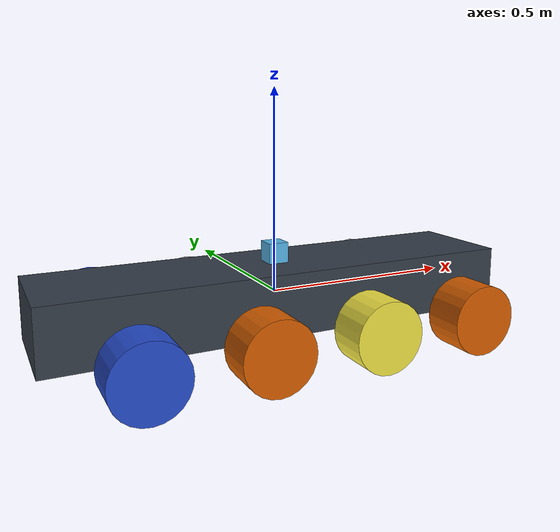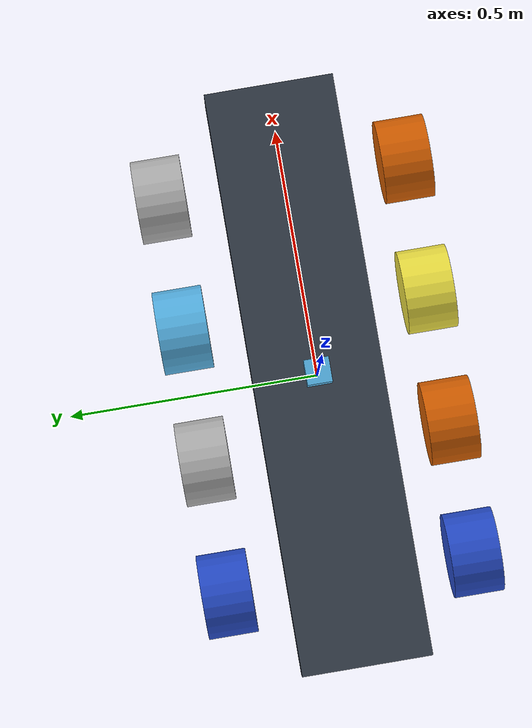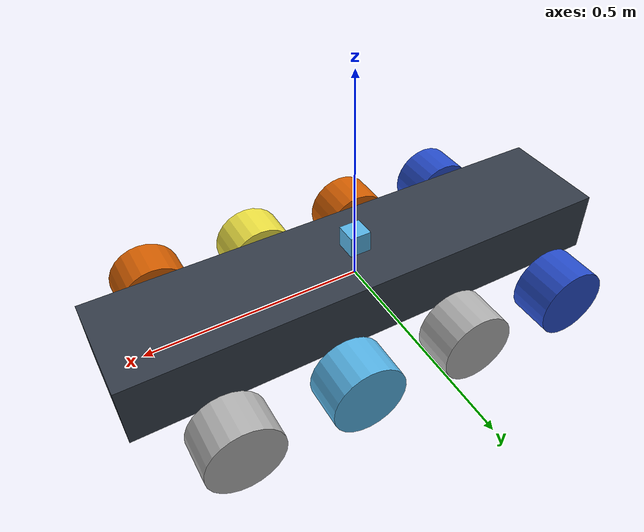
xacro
<?xml version="1.0" ?>
<robot name="agv" xmlns:xacro="https://www.ros.org/wiki/xacro" >

  <material name="black">
    <color rgba="0.0 0.0 0.0 1.0"/>
  </material>
  <material name="blue">
    <color rgba="0.203125 0.23828125 0.28515625 1.0"/>
  </material>
  <material name="green">
    <color rgba="0.0 0.8 0.0 1.0"/>
  </material>
  <material name="grey">
    <color rgba="0.2 0.2 0.2 1.0"/>
  </material>
  <material name="orange">
    <color rgba="1.0 0.423529411765 0.0392156862745 1.0"/>
  </material>
  <material name="brown">
    <color rgba="0.870588235294 0.811764705882 0.764705882353 1.0"/>
  </material>
  <material name="red">
    <color rgba="0.80078125 0.12890625 0.1328125 1.0"/>
  </material>
  <material name="white">
    <color rgba="1.0 1.0 1.0 1.0"/>
  </material>

  <gazebo reference="link_chassis">
    <material>Gazebo/Orange</material>
  </gazebo>
  <gazebo reference="link_left_wheel">
    <material>Gazebo/Blue</material>
  </gazebo>
  <gazebo reference="link_right_wheel">
    <material>Gazebo/Blue</material>
  </gazebo>

  <link name="link_chassis">
    <!-- pose and inertial -->
    <pose>0 0 0.1 0 0 0</pose>

    <inertial>
      <mass value="26"/>
      <origin rpy="0 0 0" xyz="0 0 0.1"/>
      <inertia ixx="0.0395416666667" ixy="0" ixz="0" iyy="0.106208333333" iyz="0" izz="0.106208333333"/>
    </inertial>

    <collision name="collision_chassis">
      <geometry>
        <box size="1.17 0.26 0.15"/>
      </geometry>
    </collision>

    <visual>
      <origin rpy="0 0 0" xyz="0 0 0"/>
      <geometry>
        <box size="1.17 0.26 0.15"/>
      </geometry>
      <material name="blue"/>
    </visual>

    <!-- caster front -->

    </link>

  <!-- Create wheel right -->

  <link name="link_right_wheel">
    <inertial>
      <mass value="0.2"/>
      <origin rpy="0 1.5707 1.5707" xyz="0 0 0"/>
      <inertia ixx="0.00052666666" ixy="0" ixz="0" iyy="0.00052666666" iyz="0" izz="0.001"/>
    </inertial>

    <collision name="link_right_wheel_collision">
      <origin rpy="0 1.5707 1.5707" xyz="0 0 0" />
      <geometry>
       <cylinder length="0.1" radius="0.085"/>
      </geometry>
    </collision>

    <visual name="link_right_wheel_visual">
      <origin rpy="0 1.5707 1.5707" xyz="0 0 0"/>
      <geometry>
       <cylinder length="0.1" radius="0.085"/>
      </geometry>
    </visual>

  </link>

    <link name="link_right_wheel_dir">
    <inertial>
      <mass value="0.01"/>
      <origin rpy="0 1.5707 1.5707" xyz="0 0 0"/>
      <inertia ixx="0.00052666666" ixy="0" ixz="0" iyy="0.00052666666" iyz="0" izz="0.001"/>
    </inertial>

  </link>

    <link name="link_left_wheel">
    <inertial>
      <mass value="0.2"/>
      <origin rpy="0 1.5707 1.5707" xyz="0 0 0"/>
      <inertia ixx="0.00052666666" ixy="0" ixz="0" iyy="0.00052666666" iyz="0" izz="0.001"/>
    </inertial>

    <collision name="link_left_wheel_collision">
      <origin rpy="0 1.5707 1.5707" xyz="0 0 0" />
      <geometry>
        <cylinder length="0.1" radius="0.085"/>
      </geometry>
    </collision>

    <visual name="link_left_wheel_visual">
      <origin rpy="0 1.5707 1.5707" xyz="0 0 0"/>
      <geometry>
        <cylinder length="0.1" radius="0.085"/>
      </geometry>
    </visual>

  </link>

      <link name="link_left_wheel_dir">
    <inertial>
      <mass value="0.01"/>
      <origin rpy="0 1.5707 1.5707" xyz="0 0 0"/>
      <inertia ixx="0.00052666666" ixy="0" ixz="0" iyy="0.00052666666" iyz="0" izz="0.001"/>
    </inertial>

  </link>

    <link name="link_left_wheel_2">
    <inertial>
      <mass value="0.2"/>
      <origin rpy="0 1.5707 1.5707" xyz="0 0 0"/>
      <inertia ixx="0.00052666666" ixy="0" ixz="0" iyy="0.00052666666" iyz="0" izz="0.001"/>
    </inertial>

    <collision name="link_left_wheel_collision_2">
      <origin rpy="0 1.5707 1.5707" xyz="0 0 0" />
      <geometry>
        <cylinder length="0.1" radius="0.085"/>
      </geometry>
    </collision>

    <visual name="link_left_wheel_visual_2">
      <origin rpy="0 1.5707 1.5707" xyz="0 0 0"/>
      <geometry>
       <cylinder length="0.1" radius="0.085"/>
      </geometry>
    </visual>

  </link>

       <link name="link_left_wheel_2_dir">
    <inertial>
      <mass value="0.01"/>
      <origin rpy="0 1.5707 1.5707" xyz="0 0 0"/>
      <inertia ixx="0.00052666666" ixy="0" ixz="0" iyy="0.00052666666" iyz="0" izz="0.001"/>
    </inertial>

  </link>

      <link name="link_right_wheel_2">
    <inertial>
      <mass value="0.2"/>
      <origin rpy="0 1.5707 1.5707" xyz="0 0 0"/>
      <inertia ixx="0.00052666666" ixy="0" ixz="0" iyy="0.00052666666" iyz="0" izz="0.001"/>
    </inertial>

    <collision name="link_right_wheel_collision_2">
      <origin rpy="0 1.5707 1.5707" xyz="0 0 0" />
      <geometry>
       <cylinder length="0.1" radius="0.085"/>
      </geometry>
    </collision>

    <visual name="link_right_wheel_visual_2">
      <origin rpy="0 1.5707 1.5707" xyz="0 0 0"/>
      <geometry>
      <cylinder length="0.1" radius="0.085"/>
      </geometry>
    </visual>

  </link>

         <link name="link_right_wheel_2_dir">
    <inertial>
      <mass value="0.01"/>
      <origin rpy="0 1.5707 1.5707" xyz="0 0 0"/>
      <inertia ixx="0.00052666666" ixy="0" ixz="0" iyy="0.00052666666" iyz="0" izz="0.001"/>
    </inertial>

  </link>

          <link name="link_right_wheel_3">
    <inertial>
      <mass value="0.2"/>
      <origin rpy="0 1.5707 1.5707" xyz="0 0 0"/>
      <inertia ixx="0.00052666666" ixy="0" ixz="0" iyy="0.00052666666" iyz="0" izz="0.001"/>
    </inertial>

    <collision name="link_right_wheel_collision_3">
      <origin rpy="0 1.5707 1.5707" xyz="0 0 0" />
      <geometry>
      <cylinder length="0.1" radius="0.085"/>
      </geometry>
    </collision>

    <visual name="link_right_wheel_visual_3">
      <origin rpy="0 1.5707 1.5707" xyz="0 0 0"/>
      <geometry>
        <cylinder length="0.1" radius="0.085"/>
      </geometry>
    </visual>

  </link>

         <link name="link_right_wheel_3_dir">
    <inertial>
      <mass value="0.01"/>
      <origin rpy="0 1.5707 1.5707" xyz="0 0 0"/>
      <inertia ixx="0.00052666666" ixy="0" ixz="0" iyy="0.00052666666" iyz="0" izz="0.001"/>
    </inertial>

  </link>

          <link name="link_left_wheel_3">
    <inertial>
      <mass value="0.2"/>
      <origin rpy="0 1.5707 1.5707" xyz="0 0 0"/>
      <inertia ixx="0.00052666666" ixy="0" ixz="0" iyy="0.00052666666" iyz="0" izz="0.001"/>
    </inertial>

    <collision name="link_left_wheel_collision_3">
      <origin rpy="0 1.5707 1.5707" xyz="0 0 0" />
      <geometry>
      <cylinder length="0.1" radius="0.085"/>
      </geometry>
    </collision>

    <visual name="link_left_wheel_visual_3">
      <origin rpy="0 1.5707 1.5707" xyz="0 0 0"/>
      <geometry>
        <cylinder length="0.1" radius="0.085"/>
      </geometry>
    </visual>

  </link>

         <link name="link_left_wheel_3_dir">
    <inertial>
      <mass value="0.01"/>
      <origin rpy="0 1.5707 1.5707" xyz="0 0 0"/>
      <inertia ixx="0.00052666666" ixy="0" ixz="0" iyy="0.00052666666" iyz="0" izz="0.001"/>
    </inertial>

  </link>

           <link name="link_left_wheel_4">
    <inertial>
      <mass value="0.2"/>
      <origin rpy="0 1.5707 1.5707" xyz="0 0 0"/>
      <inertia ixx="0.00052666666" ixy="0" ixz="0" iyy="0.00052666666" iyz="0" izz="0.001"/>
    </inertial>

    <collision name="link_left_wheel_collision_4">
      <origin rpy="0 1.5707 1.5707" xyz="0 0 0" />
      <geometry>
        <cylinder length="0.1" radius="0.085"/>
      </geometry>
    </collision>

    <visual name="link_left_wheel_visual_4">
      <origin rpy="0 1.5707 1.5707" xyz="0 0 0"/>
      <geometry>
        <cylinder length="0.1" radius="0.085"/>
      </geometry>
    </visual>

  </link>

         <link name="link_right_wheel_4_dir">
    <inertial>
      <mass value="0.01"/>
      <origin rpy="0 1.5707 1.5707" xyz="0 0 0"/>
      <inertia ixx="0.00052666666" ixy="0" ixz="0" iyy="0.00052666666" iyz="0" izz="0.001"/>
    </inertial>

  </link>

           <link name="link_right_wheel_4">
    <inertial>
      <mass value="0.2"/>
      <origin rpy="0 1.5707 1.5707" xyz="0 0 0"/>
      <inertia ixx="0.00052666666" ixy="0" ixz="0" iyy="0.00052666666" iyz="0" izz="0.001"/>
    </inertial>

    <collision name="link_right_wheel_collision_4">
      <origin rpy="0 1.5707 1.5707" xyz="0 0 0" />
      <geometry>
        <cylinder length="0.1" radius="0.085"/>
      </geometry>
    </collision>

    <visual name="link_right_wheel_visual_4">
      <origin rpy="0 1.5707 1.5707" xyz="0 0 0"/>
      <geometry>
        <cylinder length="0.1" radius="0.085"/>
      </geometry>
    </visual>

  </link>

         <link name="link_left_wheel_4_dir">
    <inertial>
      <mass value="0.01"/>
      <origin rpy="0 1.5707 1.5707" xyz="0 0 0"/>
      <inertia ixx="0.00052666666" ixy="0" ixz="0" iyy="0.00052666666" iyz="0" izz="0.001"/>
    </inertial>

  </link>

  <joint name="hokuyo_joint" type="fixed">

    <origin xyz="0 0 0.1" rpy="0 0 0"/>
    <parent link="link_chassis"/>
    <child link="hokuyo_link"/>
</joint>

<link name="hokuyo_link">
    <collision>
      <origin xyz="0 0 0" rpy="0 0 0"/>
      <geometry>
    <box size="0.05 0.05 0.05"/>
      </geometry>
    </collision>
    <visual>
      <origin xyz="0 0 0" rpy="0 0 0"/>
      <geometry>
        <box size="0.05 0.05 0.05"/>
      </geometry>
    </visual>
    <inertial>
      <mass value="0.00001" />
      <origin xyz="0 0 0" rpy="0 0 0"/>
      <inertia ixx="0.00000000000000001" ixy="0" ixz="0" iyy="0" iyz="0" izz="0" />
    </inertial>
  </link>

<gazebo reference="hokuyo_link">
    <sensor type="ray" name="head_hokuyo_sensor">
      <pose>0 0 2 0 0 0</pose>
      <visualize>true</visualize>
      <update_rate>40</update_rate>
      <ray>
        <scan>
          <horizontal>
            <samples>1080</samples>
            <resolution>1</resolution>
            <min_angle>-2.3559777</min_angle>
            <max_angle>2.3559777</max_angle>
          </horizontal>
        </scan>
        <range>
          <min>0.10</min>
          <max>30.0</max>
          <resolution>0.01</resolution>
        </range>
        <noise>
          <type>gaussian</type>

          <mean>0.0</mean>
          <stddev>0.01</stddev>
        </noise>
      </ray>
      <plugin name="gazebo_ros_head_hokuyo_controller" filename="libgazebo_ros_laser.so">
        <topicName>/hokuyo_scan</topicName>
        <frameName>hokuyo_link</frameName>
      </plugin>
    </sensor>
</gazebo>

  <joint name="joint_right_wheel_dir" type="revolute">
    <origin rpy="0 0 0" xyz="-0.4 0.25 -0.05"/>
    <child link="link_right_wheel_dir" />
    <parent link="link_chassis"/>
    <axis rpy="0 0 0" xyz="0 0 1"/>
    <limit effort="10000" velocity="1000" lower="-0.55" upper="0.55"/>
    <joint_properties damping="1.0" friction="1.0" />
  </joint>

  <!--   Joint for right wheel  -->
  <joint name="joint_right_wheel" type="continuous">
    <origin rpy="0 0 0" xyz="0 0 0"/>
    <child link="link_right_wheel" />
    <parent link="link_right_wheel_dir"/>
    <limit effort="10000" velocity="1000"/>
    <axis rpy="0 0 0" xyz="0 1 0"/>
    <joint_properties damping="1.0" friction="1.0" />
  </joint>

  <joint name="joint_left_wheel_dir" type="revolute">
    <origin rpy="0 0 0" xyz="-0.4 -0.25 -0.05"/>
    <child link="link_left_wheel_dir" />
    <parent link="link_chassis"/>
    <axis rpy="0 0 0" xyz="0 0 1"/>
    <limit effort="10000" velocity="1000" lower="-0.55" upper="0.55"/>
    <joint_properties damping="1.0" friction="1.0" />
  </joint>

  <joint name="joint_left_wheel" type="continuous">
    <origin rpy="0 0 0" xyz="0 0 0"/>
    <child link="link_left_wheel" />
    <parent link="link_left_wheel_dir"/>
    <axis rpy="0 0 0" xyz="0 1 0"/>
    <limit effort="10000" velocity="1000"/>
    <joint_properties damping="1.0" friction="1.0" />
  </joint>

    <joint name="joint_right_wheel_2_dir" type="revolute">
    <origin rpy="0 0 0" xyz="-0.13 0.25 -0.05"/>
    <child link="link_right_wheel_2_dir" />
    <parent link="link_chassis"/>
    <axis rpy="0 0 0" xyz="0 0 1"/>
    <limit effort="10000" velocity="1000" lower="-0.55" upper="0.55"/>
    <joint_properties damping="1.0" friction="1.0" />
  </joint>

   <joint name="joint_right_wheel_2" type="continuous">
    <origin rpy="0 0 0" xyz="0 0 0"/>
    <child link="link_right_wheel_2" />
    <parent link="link_right_wheel_2_dir"/>
    <axis rpy="0 0 0" xyz="0 1 0"/>
    <limit effort="10000" velocity="1000"/>
    <joint_properties damping="1.0" friction="1.0" />
  </joint>

      <joint name="joint_left_wheel_2_dir" type="revolute">
    <origin rpy="0 0 0" xyz="-0.13 -0.25 -0.05"/>
    <child link="link_left_wheel_2_dir" />
    <parent link="link_chassis"/>
    <axis rpy="0 0 0" xyz="0 0 1"/>
    <limit effort="10000" velocity="1000" lower="-0.55" upper="0.55"/>
    <joint_properties damping="1.0" friction="1.0" />
  </joint>

  <joint name="joint_left_wheel_2" type="continuous">
    <origin rpy="0 0 0" xyz="0 0 0"/>
    <child link="link_left_wheel_2" />
    <parent link="link_left_wheel_2_dir"/>
    <axis rpy="0 0 0" xyz="0 1 0"/>
    <limit effort="10000" velocity="1000"/>
    <joint_properties damping="1.0" friction="1.0" />
  </joint>

       <joint name="joint_right_wheel_3_dir" type="revolute">
    <origin rpy="0 0 0" xyz="0.14 0.25 -0.05"/>
    <child link="link_right_wheel_3_dir" />
    <parent link="link_chassis"/>
    <axis rpy="0 0 0" xyz="0 0 1"/>
    <limit effort="10000" velocity="1000" lower="-0.55" upper="0.55"/>
    <joint_properties damping="1.0" friction="1.0" />
  </joint>

  <!--   Joint for right wheel  -->
  <joint name="joint_right_wheel_3" type="continuous">
    <origin rpy="0 0 0" xyz="0 0 0"/>
    <child link="link_right_wheel_3" />
    <parent link="link_right_wheel_3_dir"/>
    <axis rpy="0 0 0" xyz="0 1 0"/>
    <limit effort="10000" velocity="1000"/>
    <joint_properties damping="1.0" friction="1.0" />
  </joint>

           <joint name="joint_left_wheel_3_dir" type="revolute">
    <origin rpy="0 0 0" xyz="0.14 -0.25 -0.05"/>
    <child link="link_left_wheel_3_dir" />
    <parent link="link_chassis"/>
    <axis rpy="0 0 0" xyz="0 0 1"/>
    <limit effort="10000" velocity="1000" lower="-0.55" upper="0.55"/>
    <joint_properties damping="1.0" friction="1.0" />
  </joint>

  <!--   Joint for right wheel  -->
  <joint name="joint_left_wheel_3" type="continuous">
    <origin rpy="0 0 0" xyz="0 0 0"/>
    <child link="link_left_wheel_3" />
    <parent link="link_left_wheel_3_dir"/>
    <axis rpy="0 0 0" xyz="0 1 0"/>
    <limit effort="10000" velocity="1000"/>
    <joint_properties damping="1.0" friction="1.0" />
  </joint>

            <joint name="joint_right_wheel_4_dir" type="revolute">
    <origin rpy="0 0 0" xyz="0.41 0.25 -0.05"/>
    <child link="link_right_wheel_4_dir" />
    <parent link="link_chassis"/>
    <axis rpy="0 0 0" xyz="0 0 1"/>
    <limit effort="10000" velocity="1000" lower="-0.55" upper="0.55"/>
    <joint_properties damping="1.0" friction="1.0" />
  </joint>

      <joint name="joint_right_wheel_4" type="continuous">
    <origin rpy="0 0 0" xyz="0 0 0"/>
    <child link="link_right_wheel_4" />
    <parent link="link_right_wheel_4_dir"/>
    <axis rpy="0 0 0" xyz="0 1 0"/>
    <limit effort="10000" velocity="1000"/>
    <joint_properties damping="1.0" friction="1.0" />
  </joint>

    <joint name="joint_left_wheel_4_dir" type="revolute">
    <origin rpy="0 0 0" xyz="0.41 -0.25 -0.05"/>
    <child link="link_left_wheel_4_dir" />
    <parent link="link_chassis"/>
    <axis rpy="0 0 0" xyz="0 0 1"/>
    <limit effort="10000" velocity="1000" lower="-0.55" upper="0.55"/>
    <joint_properties damping="1.0" friction="1.0" />
  </joint>

  <!--   Joint for right wheel  -->
  <joint name="joint_left_wheel_4" type="continuous">
    <origin rpy="0 0 0" xyz="0 0 0"/>
    <child link="link_left_wheel_4" />
    <parent link="link_left_wheel_4_dir"/>
    <axis rpy="0 0 0" xyz="0 1 0"/>
    <limit effort="10000" velocity="1000"/>
    <joint_properties damping="1.0" friction="1.0" />
  </joint>

        <transmission name="tran_joint_right_wheel_dir">
      <type>transmission_interface/SimpleTransmission</type>
      <joint name="joint_right_wheel_dir">
        <hardwareInterface>hardware_interface/EffortJointInterface</hardwareInterface>
      </joint>
      <actuator name="motor_joint_right_wheel_dir">
        <hardwareInterface>hardware_interface/EffortJointInterface</hardwareInterface>
        <mechanicalReduction>1</mechanicalReduction>
      </actuator>
    </transmission>

    <transmission name="tran_joint_left_wheel_dir">
      <type>transmission_interface/SimpleTransmission</type>
      <joint name="joint_left_wheel_dir">
        <hardwareInterface>hardware_interface/EffortJointInterface</hardwareInterface>
      </joint>
      <actuator name="motor_joint_left_wheel_dir">
        <hardwareInterface>hardware_interface/EffortJointInterface</hardwareInterface>
        <mechanicalReduction>1</mechanicalReduction>
      </actuator>
    </transmission>

    <transmission name="tran_joint_right_wheel_2_dir">
      <type>transmission_interface/SimpleTransmission</type>
      <joint name="joint_right_wheel_2_dir">
        <hardwareInterface>hardware_interface/EffortJointInterface</hardwareInterface>
      </joint>
      <actuator name="motor_joint_right_wheel_2_dir">
        <hardwareInterface>hardware_interface/EffortJointInterface</hardwareInterface>
        <mechanicalReduction>1</mechanicalReduction>
      </actuator>
    </transmission>

    <transmission name="tran_joint_left_wheel_2_dir">
      <type>transmission_interface/SimpleTransmission</type>
      <joint name="joint_left_wheel_2_dir">
        <hardwareInterface>hardware_interface/EffortJointInterface</hardwareInterface>
      </joint>
      <actuator name="motor_joint_left_wheel_2_dir">
        <hardwareInterface>hardware_interface/EffortJointInterface</hardwareInterface>
        <mechanicalReduction>1</mechanicalReduction>
      </actuator>
    </transmission>

    <transmission name="tran_joint_left_wheel_3_dir">
      <type>transmission_interface/SimpleTransmission</type>
      <joint name="joint_left_wheel_3_dir">
        <hardwareInterface>hardware_interface/EffortJointInterface</hardwareInterface>
      </joint>
      <actuator name="motor_joint_left_wheel_3_dir">
        <hardwareInterface>hardware_interface/EffortJointInterface</hardwareInterface>
        <mechanicalReduction>1</mechanicalReduction>
      </actuator>
    </transmission>

    <transmission name="tran_joint_left_wheel_4_dir">
      <type>transmission_interface/SimpleTransmission</type>
      <joint name="joint_left_wheel_4_dir">
        <hardwareInterface>hardware_interface/EffortJointInterface</hardwareInterface>
      </joint>
      <actuator name="motor_joint_left_wheel_4_dir">
        <hardwareInterface>hardware_interface/EffortJointInterface</hardwareInterface>
        <mechanicalReduction>1</mechanicalReduction>
      </actuator>
    </transmission>

    <transmission name="tran_joint_right_wheel_3_dir">
      <type>transmission_interface/SimpleTransmission</type>
      <joint name="joint_right_wheel_3_dir">
        <hardwareInterface>hardware_interface/EffortJointInterface</hardwareInterface>
      </joint>
      <actuator name="motor_joint_right_wheel_3_dir">
        <hardwareInterface>hardware_interface/EffortJointInterface</hardwareInterface>
        <mechanicalReduction>1</mechanicalReduction>
      </actuator>
    </transmission>

    <transmission name="tran_joint_right_wheel_4_dir">
      <type>transmission_interface/SimpleTransmission</type>
      <joint name="joint_right_wheel_4_dir">
        <hardwareInterface>hardware_interface/EffortJointInterface</hardwareInterface>
      </joint>
      <actuator name="motor_joint_right_wheel_4_dir">
        <hardwareInterface>hardware_interface/EffortJointInterface</hardwareInterface>
        <mechanicalReduction>1</mechanicalReduction>
      </actuator>
    </transmission>

  <gazebo>
  <plugin name="gazebo_ros_control" filename="libgazebo_ros_control.so">
    <robotNamespace>/agv</robotNamespace>
  </plugin>
</gazebo>

</robot>
